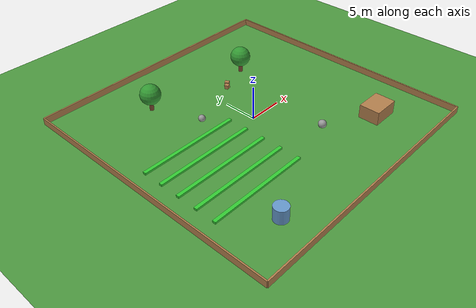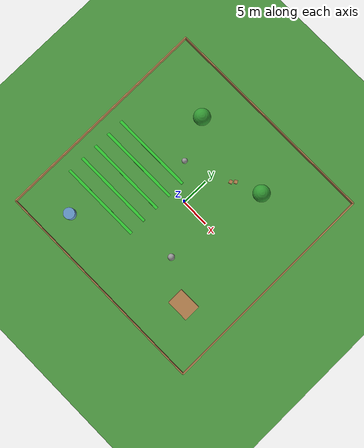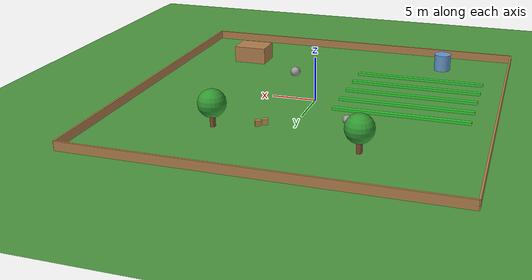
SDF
<?xml version="1.0"?>
<sdf version="1.6">
  <world name="agricultural_field">

    <!-- Physics -->
    <physics type="ode">
      <max_step_size>0.001</max_step_size>
      <real_time_factor>1</real_time_factor>
      <real_time_update_rate>1000</real_time_update_rate>
    </physics>

    <!-- Lighting -->
    <include>
      <uri>model://sun</uri>
    </include>

    <!-- Ground plane with grass texture -->
    <model name="ground_plane">
      <static>true</static>
      <link name="link">
        <collision name="collision">
          <geometry>
            <plane>
              <normal>0 0 1</normal>
              <size>100 100</size>
            </plane>
          </geometry>
          <surface>
            <friction>
              <ode>
                <mu>100</mu>
                <mu2>50</mu2>
              </ode>
            </friction>
          </surface>
        </collision>
        <visual name="visual">
          <cast_shadows>false</cast_shadows>
          <geometry>
            <plane>
              <normal>0 0 1</normal>
              <size>100 100</size>
            </plane>
          </geometry>
          <material>
            <script>
              <uri>file://media/materials/scripts/gazebo.material</uri>
              <name>Gazebo/Grass</name>
            </script>
          </material>
        </visual>
      </link>
    </model>

    <!-- Field boundaries (fences) -->
    <model name="fence_north">
      <static>true</static>
      <pose>0 20 0.5 0 0 0</pose>
      <link name="link">
        <collision name="collision">
          <geometry>
            <box>
              <size>40 0.2 1</size>
            </box>
          </geometry>
        </collision>
        <visual name="visual">
          <geometry>
            <box>
              <size>40 0.2 1</size>
            </box>
          </geometry>
          <material>
            <script>
              <uri>file://media/materials/scripts/gazebo.material</uri>
              <name>Gazebo/Wood</name>
            </script>
          </material>
        </visual>
      </link>
    </model>

    <model name="fence_south">
      <static>true</static>
      <pose>0 -20 0.5 0 0 0</pose>
      <link name="link">
        <collision name="collision">
          <geometry>
            <box>
              <size>40 0.2 1</size>
            </box>
          </geometry>
        </collision>
        <visual name="visual">
          <geometry>
            <box>
              <size>40 0.2 1</size>
            </box>
          </geometry>
          <material>
            <script>
              <uri>file://media/materials/scripts/gazebo.material</uri>
              <name>Gazebo/Wood</name>
            </script>
          </material>
        </visual>
      </link>
    </model>

    <model name="fence_east">
      <static>true</static>
      <pose>20 0 0.5 0 0 1.5708</pose>
      <link name="link">
        <collision name="collision">
          <geometry>
            <box>
              <size>40 0.2 1</size>
            </box>
          </geometry>
        </collision>
        <visual name="visual">
          <geometry>
            <box>
              <size>40 0.2 1</size>
            </box>
          </geometry>
          <material>
            <script>
              <uri>file://media/materials/scripts/gazebo.material</uri>
              <name>Gazebo/Wood</name>
            </script>
          </material>
        </visual>
      </link>
    </model>

    <model name="fence_west">
      <static>true</static>
      <pose>-20 0 0.5 0 0 1.5708</pose>
      <link name="link">
        <collision name="collision">
          <geometry>
            <box>
              <size>40 0.2 1</size>
            </box>
          </geometry>
        </collision>
        <visual name="visual">
          <geometry>
            <box>
              <size>40 0.2 1</size>
            </box>
          </geometry>
          <material>
            <script>
              <uri>file://media/materials/scripts/gazebo.material</uri>
              <name>Gazebo/Wood</name>
            </script>
          </material>
        </visual>
      </link>
    </model>

    <!-- Crop rows (simulated with green boxes) -->
    <!-- Row 1 -->
    <model name="crop_row_1">
      <static>true</static>
      <pose>-10 -10 0.15 0 0 0</pose>
      <link name="link">
        <collision name="collision">
          <geometry>
            <box>
              <size>15 0.5 0.3</size>
            </box>
          </geometry>
        </collision>
        <visual name="visual">
          <geometry>
            <box>
              <size>15 0.5 0.3</size>
            </box>
          </geometry>
          <material>
            <ambient>0.2 0.6 0.2 1</ambient>
            <diffuse>0.2 0.8 0.2 1</diffuse>
          </material>
        </visual>
      </link>
    </model>

    <!-- Row 2 -->
    <model name="crop_row_2">
      <static>true</static>
      <pose>-10 -7 0.15 0 0 0</pose>
      <link name="link">
        <collision name="collision">
          <geometry>
            <box>
              <size>15 0.5 0.3</size>
            </box>
          </geometry>
        </collision>
        <visual name="visual">
          <geometry>
            <box>
              <size>15 0.5 0.3</size>
            </box>
          </geometry>
          <material>
            <ambient>0.2 0.6 0.2 1</ambient>
            <diffuse>0.2 0.8 0.2 1</diffuse>
          </material>
        </visual>
      </link>
    </model>

    <!-- Row 3 -->
    <model name="crop_row_3">
      <static>true</static>
      <pose>-10 -4 0.15 0 0 0</pose>
      <link name="link">
        <collision name="collision">
          <geometry>
            <box>
              <size>15 0.5 0.3</size>
            </box>
          </geometry>
        </collision>
        <visual name="visual">
          <geometry>
            <box>
              <size>15 0.5 0.3</size>
            </box>
          </geometry>
          <material>
            <ambient>0.2 0.6 0.2 1</ambient>
            <diffuse>0.2 0.8 0.2 1</diffuse>
          </material>
        </visual>
      </link>
    </model>

    <!-- Row 4 -->
    <model name="crop_row_4">
      <static>true</static>
      <pose>-10 -1 0.15 0 0 0</pose>
      <link name="link">
        <collision name="collision">
          <geometry>
            <box>
              <size>15 0.5 0.3</size>
            </box>
          </geometry>
        </collision>
        <visual name="visual">
          <geometry>
            <box>
              <size>15 0.5 0.3</size>
            </box>
          </geometry>
          <material>
            <ambient>0.2 0.6 0.2 1</ambient>
            <diffuse>0.2 0.8 0.2 1</diffuse>
          </material>
        </visual>
      </link>
    </model>

    <!-- Row 5 -->
    <model name="crop_row_5">
      <static>true</static>
      <pose>-10 2 0.15 0 0 0</pose>
      <link name="link">
        <collision name="collision">
          <geometry>
            <box>
              <size>15 0.5 0.3</size>
            </box>
          </geometry>
        </collision>
        <visual name="visual">
          <geometry>
            <box>
              <size>15 0.5 0.3</size>
            </box>
          </geometry>
          <material>
            <ambient>0.2 0.6 0.2 1</ambient>
            <diffuse>0.2 0.8 0.2 1</diffuse>
          </material>
        </visual>
      </link>
    </model>

    <!-- Trees (obstacles) -->
    <model name="tree_1">
      <static>true</static>
      <pose>8 10 0 0 0 0</pose>
      <link name="trunk">
        <collision name="collision">
          <geometry>
            <cylinder>
              <radius>0.3</radius>
              <length>3</length>
            </cylinder>
          </geometry>
        </collision>
        <visual name="visual">
          <geometry>
            <cylinder>
              <radius>0.3</radius>
              <length>3</length>
            </cylinder>
          </geometry>
          <material>
            <ambient>0.4 0.2 0.1 1</ambient>
            <diffuse>0.5 0.3 0.2 1</diffuse>
          </material>
        </visual>
      </link>
      <link name="canopy">
        <pose>0 0 2.5 0 0 0</pose>
        <collision name="collision">
          <geometry>
            <sphere>
              <radius>1.5</radius>
            </sphere>
          </geometry>
        </collision>
        <visual name="visual">
          <geometry>
            <sphere>
              <radius>1.5</radius>
            </sphere>
          </geometry>
          <material>
            <ambient>0.1 0.4 0.1 1</ambient>
            <diffuse>0.2 0.6 0.2 1</diffuse>
          </material>
        </visual>
      </link>
    </model>

    <model name="tree_2">
      <static>true</static>
      <pose>-8 12 0 0 0 0</pose>
      <link name="trunk">
        <collision name="collision">
          <geometry>
            <cylinder>
              <radius>0.3</radius>
              <length>3</length>
            </cylinder>
          </geometry>
        </collision>
        <visual name="visual">
          <geometry>
            <cylinder>
              <radius>0.3</radius>
              <length>3</length>
            </cylinder>
          </geometry>
          <material>
            <ambient>0.4 0.2 0.1 1</ambient>
            <diffuse>0.5 0.3 0.2 1</diffuse>
          </material>
        </visual>
      </link>
      <link name="canopy">
        <pose>0 0 2.5 0 0 0</pose>
        <collision name="collision">
          <geometry>
            <sphere>
              <radius>1.5</radius>
            </sphere>
          </geometry>
        </collision>
        <visual name="visual">
          <geometry>
            <sphere>
              <radius>1.5</radius>
            </sphere>
          </geometry>
          <material>
            <ambient>0.1 0.4 0.1 1</ambient>
            <diffuse>0.2 0.6 0.2 1</diffuse>
          </material>
        </visual>
      </link>
    </model>

    <!-- Rocks (obstacles) -->
    <model name="rock_1">
      <static>true</static>
      <pose>5 -8 0.3 0 0 0</pose>
      <link name="link">
        <collision name="collision">
          <geometry>
            <sphere>
              <radius>0.6</radius>
            </sphere>
          </geometry>
        </collision>
        <visual name="visual">
          <geometry>
            <sphere>
              <radius>0.6</radius>
            </sphere>
          </geometry>
          <material>
            <script>
              <uri>file://media/materials/scripts/gazebo.material</uri>
              <name>Gazebo/Grey</name>
            </script>
          </material>
        </visual>
      </link>
    </model>

    <model name="rock_2">
      <static>true</static>
      <pose>-5 5 0.25 0 0 0.5</pose>
      <link name="link">
        <collision name="collision">
          <geometry>
            <sphere>
              <radius>0.5</radius>
            </sphere>
          </geometry>
        </collision>
        <visual name="visual">
          <geometry>
            <sphere>
              <radius>0.5</radius>
            </sphere>
          </geometry>
          <material>
            <script>
              <uri>file://media/materials/scripts/gazebo.material</uri>
              <name>Gazebo/Grey</name>
            </script>
          </material>
        </visual>
      </link>
    </model>

    <!-- Small shed/barn -->
    <model name="shed">
      <static>true</static>
      <pose>12 -12 1 0 0 0</pose>
      <link name="link">
        <collision name="collision">
          <geometry>
            <box>
              <size>4 3 2</size>
            </box>
          </geometry>
        </collision>
        <visual name="visual">
          <geometry>
            <box>
              <size>4 3 2</size>
            </box>
          </geometry>
          <material>
            <script>
              <uri>file://media/materials/scripts/gazebo.material</uri>
              <name>Gazebo/Wood</name>
            </script>
          </material>
        </visual>
      </link>
    </model>

    <!-- Water tank (cylinder) -->
    <model name="water_tank">
      <static>true</static>
      <pose>-12 -15 1 0 0 0</pose>
      <link name="link">
        <collision name="collision">
          <geometry>
            <cylinder>
              <radius>1</radius>
              <length>2</length>
            </cylinder>
          </geometry>
        </collision>
        <visual name="visual">
          <geometry>
            <cylinder>
              <radius>1</radius>
              <length>2</length>
            </cylinder>
          </geometry>
          <material>
            <ambient>0.3 0.5 0.7 1</ambient>
            <diffuse>0.4 0.6 0.8 1</diffuse>
          </material>
        </visual>
      </link>
    </model>

    <!-- Some boxes (obstacles) -->
    <model name="box_1">
      <static>true</static>
      <pose>3 8 0.3 0 0 0.3</pose>
      <link name="link">
        <collision name="collision">
          <geometry>
            <box>
              <size>0.6 0.6 0.6</size>
            </box>
          </geometry>
        </collision>
        <visual name="visual">
          <geometry>
            <box>
              <size>0.6 0.6 0.6</size>
            </box>
          </geometry>
          <material>
            <script>
              <uri>file://media/materials/scripts/gazebo.material</uri>
              <name>Gazebo/Wood</name>
            </script>
          </material>
        </visual>
      </link>
    </model>

    <model name="box_2">
      <static>true</static>
      <pose>3.6 8.6 0.3 0 0 0.5</pose>
      <link name="link">
        <collision name="collision">
          <geometry>
            <box>
              <size>0.6 0.6 0.6</size>
            </box>
          </geometry>
        </collision>
        <visual name="visual">
          <geometry>
            <box>
              <size>0.6 0.6 0.6</size>
            </box>
          </geometry>
          <material>
            <script>
              <uri>file://media/materials/scripts/gazebo.material</uri>
              <name>Gazebo/Wood</name>
            </script>
          </material>
        </visual>
      </link>
    </model>

  </world>
</sdf>
